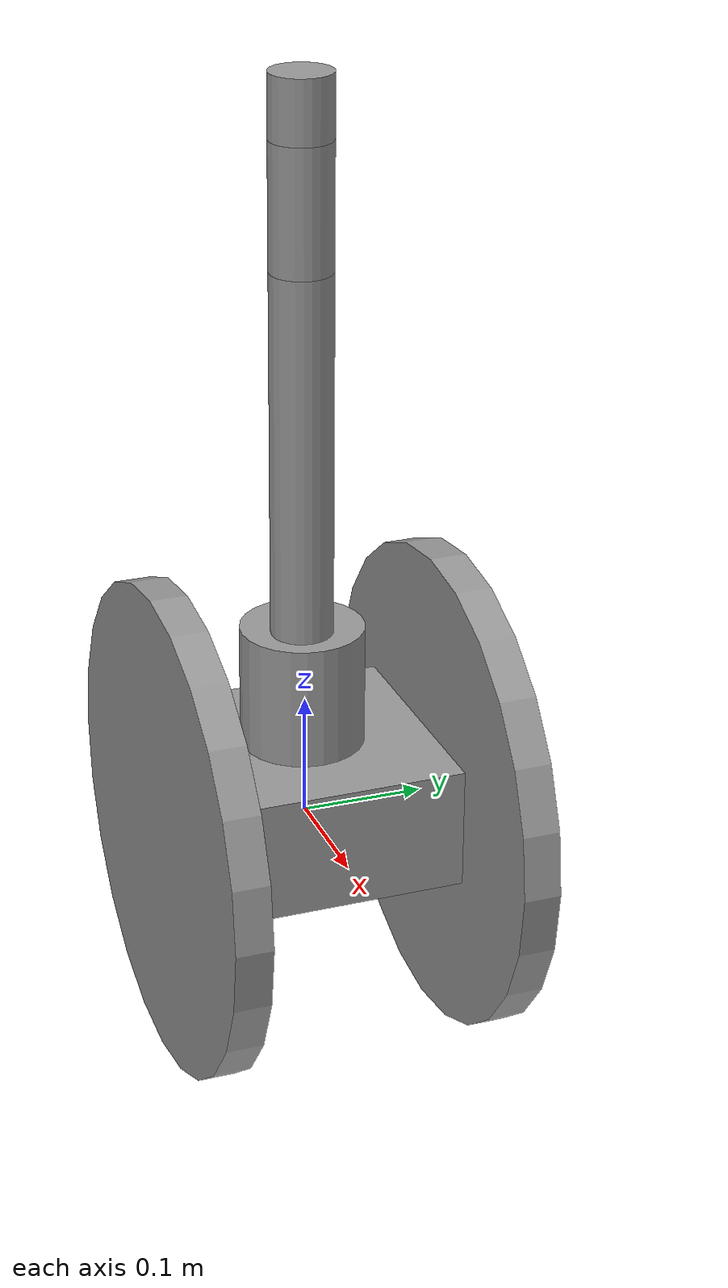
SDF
<?xml version='1.0'?>
<sdf version='1.7'>
  <model name='project1_model'>
    <link name='link_0'>
      <inertial>
        <mass>1</mass>
        <inertia>
          <ixx>0.166667</ixx>
          <ixy>0</ixy>
          <ixz>0</ixz>
          <iyy>0.166667</iyy>
          <iyz>0</iyz>
          <izz>0.166667</izz>
        </inertia>
        <pose>0 0 0 0 -0 0</pose>
      </inertial>
      <pose>0 -0.002143 0.016429 0 -0 0</pose>
      <gravity>1</gravity>
      <self_collide>0</self_collide>
      <kinematic>0</kinematic>
      <enable_wind>0</enable_wind>
      <visual name='visual'>
        <pose>0 0 0 0 -0 0</pose>
        <geometry>
          <box>
            <size>0.2 0.2 0.1</size>
          </box>
        </geometry>
        <material>
          <lighting>1</lighting>
          <script>
            <uri>file://media/materials/scripts/gazebo.material</uri>
            <name>Gazebo/Grey</name>
          </script>
          <shader type='pixel'>
            <normal_map>__default__</normal_map>
          </shader>
          <ambient>0.3 0.3 0.3 1</ambient>
          <diffuse>0.7 0.7 0.7 1</diffuse>
          <specular>0.01 0.01 0.01 1</specular>
          <emissive>0 0 0 1</emissive>
        </material>
        <transparency>0</transparency>
        <cast_shadows>1</cast_shadows>
      </visual>
      <collision name='collision'>
        <laser_retro>0</laser_retro>
        <max_contacts>10</max_contacts>
        <pose>0 0 0 0 -0 0</pose>
        <geometry>
          <box>
            <size>0.2 0.2 0.1</size>
          </box>
        </geometry>
        <surface>
          <friction>
            <ode>
              <mu>1</mu>
              <mu2>1</mu2>
              <fdir1>0 0 0</fdir1>
              <slip1>0</slip1>
              <slip2>0</slip2>
            </ode>
            <torsional>
              <coefficient>1</coefficient>
              <patch_radius>0</patch_radius>
              <surface_radius>0</surface_radius>
              <use_patch_radius>1</use_patch_radius>
              <ode>
                <slip>0</slip>
              </ode>
            </torsional>
          </friction>
          <bounce>
            <restitution_coefficient>0</restitution_coefficient>
            <threshold>1e+06</threshold>
          </bounce>
          <contact>
            <collide_without_contact>0</collide_without_contact>
            <collide_without_contact_bitmask>1</collide_without_contact_bitmask>
            <collide_bitmask>1</collide_bitmask>
            <ode>
              <soft_cfm>0</soft_cfm>
              <soft_erp>0.2</soft_erp>
              <kp>1e+13</kp>
              <kd>1</kd>
              <max_vel>0.01</max_vel>
              <min_depth>0</min_depth>
            </ode>
            <bullet>
              <split_impulse>1</split_impulse>
              <split_impulse_penetration_threshold>-0.01</split_impulse_penetration_threshold>
              <soft_cfm>0</soft_cfm>
              <soft_erp>0.2</soft_erp>
              <kp>1e+13</kp>
              <kd>1</kd>
            </bullet>
          </contact>
        </surface>
      </collision>
    </link>
    <link name='link_1'>
      <inertial>
        <mass>1</mass>
        <inertia>
          <ixx>0.145833</ixx>
          <ixy>0</ixy>
          <ixz>0</ixz>
          <iyy>0.145833</iyy>
          <iyz>0</iyz>
          <izz>0.125</izz>
        </inertia>
        <pose>0 0 0 0 -0 0</pose>
      </inertial>
      <pose>0.02 -0.117162 0.016429 1.5707 -0 0</pose>
      <gravity>1</gravity>
      <self_collide>0</self_collide>
      <kinematic>0</kinematic>
      <enable_wind>0</enable_wind>
      <visual name='visual'>
        <pose>0 0 0 0 -0 0</pose>
        <geometry>
          <cylinder>
            <radius>0.2</radius>
            <length>0.03</length>
          </cylinder>
        </geometry>
        <material>
          <lighting>1</lighting>
          <script>
            <uri>file://media/materials/scripts/gazebo.material</uri>
            <name>Gazebo/Grey</name>
          </script>
          <shader type='pixel'>
            <normal_map>__default__</normal_map>
          </shader>
          <ambient>0.3 0.3 0.3 1</ambient>
          <diffuse>0.7 0.7 0.7 1</diffuse>
          <specular>0.01 0.01 0.01 1</specular>
          <emissive>0 0 0 1</emissive>
        </material>
        <transparency>0</transparency>
        <cast_shadows>1</cast_shadows>
      </visual>
      <collision name='collision'>
        <laser_retro>0</laser_retro>
        <max_contacts>10</max_contacts>
        <pose>0 0 0 0 -0 0</pose>
        <geometry>
          <cylinder>
            <radius>0.2</radius>
            <length>0.03</length>
          </cylinder>
        </geometry>
        <surface>
          <friction>
            <ode>
              <mu>1</mu>
              <mu2>1</mu2>
              <fdir1>0 0 0</fdir1>
              <slip1>0</slip1>
              <slip2>0</slip2>
            </ode>
            <torsional>
              <coefficient>1</coefficient>
              <patch_radius>0</patch_radius>
              <surface_radius>0</surface_radius>
              <use_patch_radius>1</use_patch_radius>
              <ode>
                <slip>0</slip>
              </ode>
            </torsional>
          </friction>
          <bounce>
            <restitution_coefficient>0</restitution_coefficient>
            <threshold>1e+06</threshold>
          </bounce>
          <contact>
            <collide_without_contact>0</collide_without_contact>
            <collide_without_contact_bitmask>1</collide_without_contact_bitmask>
            <collide_bitmask>1</collide_bitmask>
            <ode>
              <soft_cfm>0</soft_cfm>
              <soft_erp>0.2</soft_erp>
              <kp>1e+13</kp>
              <kd>1</kd>
              <max_vel>0.01</max_vel>
              <min_depth>0</min_depth>
            </ode>
            <bullet>
              <split_impulse>1</split_impulse>
              <split_impulse_penetration_threshold>-0.01</split_impulse_penetration_threshold>
              <soft_cfm>0</soft_cfm>
              <soft_erp>0.2</soft_erp>
              <kp>1e+13</kp>
              <kd>1</kd>
            </bullet>
          </contact>
        </surface>
      </collision>
    </link>
    <link name='link_1_clone'>
      <inertial>
        <mass>1</mass>
        <inertia>
          <ixx>0.145833</ixx>
          <ixy>0</ixy>
          <ixz>0</ixz>
          <iyy>0.145833</iyy>
          <iyz>0</iyz>
          <izz>0.125</izz>
        </inertia>
        <pose>0 0 0 0 -0 0</pose>
      </inertial>
      <pose>0.02 0.112857 0.016429 1.5707 -0 0</pose>
      <gravity>1</gravity>
      <self_collide>0</self_collide>
      <kinematic>0</kinematic>
      <enable_wind>0</enable_wind>
      <visual name='visual'>
        <pose>0 0 0 0 -0 0</pose>
        <geometry>
          <cylinder>
            <radius>0.2</radius>
            <length>0.03</length>
          </cylinder>
        </geometry>
        <material>
          <lighting>1</lighting>
          <script>
            <uri>file://media/materials/scripts/gazebo.material</uri>
            <name>Gazebo/Grey</name>
          </script>
          <shader type='pixel'>
            <normal_map>__default__</normal_map>
          </shader>
          <ambient>0.3 0.3 0.3 1</ambient>
          <diffuse>0.7 0.7 0.7 1</diffuse>
          <specular>0.01 0.01 0.01 1</specular>
          <emissive>0 0 0 1</emissive>
        </material>
        <transparency>0</transparency>
        <cast_shadows>1</cast_shadows>
      </visual>
      <collision name='collision'>
        <laser_retro>0</laser_retro>
        <max_contacts>10</max_contacts>
        <pose>0 0 0 0 -0 0</pose>
        <geometry>
          <cylinder>
            <radius>0.2</radius>
            <length>0.03</length>
          </cylinder>
        </geometry>
        <surface>
          <friction>
            <ode>
              <mu>1</mu>
              <mu2>1</mu2>
              <fdir1>0 0 0</fdir1>
              <slip1>0</slip1>
              <slip2>0</slip2>
            </ode>
            <torsional>
              <coefficient>1</coefficient>
              <patch_radius>0</patch_radius>
              <surface_radius>0</surface_radius>
              <use_patch_radius>1</use_patch_radius>
              <ode>
                <slip>0</slip>
              </ode>
            </torsional>
          </friction>
          <bounce>
            <restitution_coefficient>0</restitution_coefficient>
            <threshold>1e+06</threshold>
          </bounce>
          <contact>
            <collide_without_contact>0</collide_without_contact>
            <collide_without_contact_bitmask>1</collide_without_contact_bitmask>
            <collide_bitmask>1</collide_bitmask>
            <ode>
              <soft_cfm>0</soft_cfm>
              <soft_erp>0.2</soft_erp>
              <kp>1e+13</kp>
              <kd>1</kd>
              <max_vel>0.01</max_vel>
              <min_depth>0</min_depth>
            </ode>
            <bullet>
              <split_impulse>1</split_impulse>
              <split_impulse_penetration_threshold>-0.01</split_impulse_penetration_threshold>
              <soft_cfm>0</soft_cfm>
              <soft_erp>0.2</soft_erp>
              <kp>1e+13</kp>
              <kd>1</kd>
            </bullet>
          </contact>
        </surface>
      </collision>
    </link>
    <link name='link_2'>
      <inertial>
        <mass>1</mass>
        <inertia>
          <ixx>0.145833</ixx>
          <ixy>0</ixy>
          <ixz>0</ixz>
          <iyy>0.145833</iyy>
          <iyz>0</iyz>
          <izz>0.125</izz>
        </inertia>
        <pose>0 0 0 0 -0 0</pose>
      </inertial>
      <pose>0 -0.002143 0.116429 0 -0 0</pose>
      <gravity>1</gravity>
      <self_collide>0</self_collide>
      <kinematic>0</kinematic>
      <enable_wind>0</enable_wind>
      <visual name='visual'>
        <pose>0 0 0 0 -0 0</pose>
        <geometry>
          <cylinder>
            <radius>0.05</radius>
            <length>0.1</length>
          </cylinder>
        </geometry>
        <material>
          <lighting>1</lighting>
          <script>
            <uri>file://media/materials/scripts/gazebo.material</uri>
            <name>Gazebo/Grey</name>
          </script>
          <shader type='pixel'>
            <normal_map>__default__</normal_map>
          </shader>
          <ambient>0.3 0.3 0.3 1</ambient>
          <diffuse>0.7 0.7 0.7 1</diffuse>
          <specular>0.01 0.01 0.01 1</specular>
          <emissive>0 0 0 1</emissive>
        </material>
        <transparency>0</transparency>
        <cast_shadows>1</cast_shadows>
      </visual>
      <collision name='collision'>
        <laser_retro>0</laser_retro>
        <max_contacts>10</max_contacts>
        <pose>0 0 0 0 -0 0</pose>
        <geometry>
          <cylinder>
            <radius>0.05</radius>
            <length>0.1</length>
          </cylinder>
        </geometry>
        <surface>
          <friction>
            <ode>
              <mu>1</mu>
              <mu2>1</mu2>
              <fdir1>0 0 0</fdir1>
              <slip1>0</slip1>
              <slip2>0</slip2>
            </ode>
            <torsional>
              <coefficient>1</coefficient>
              <patch_radius>0</patch_radius>
              <surface_radius>0</surface_radius>
              <use_patch_radius>1</use_patch_radius>
              <ode>
                <slip>0</slip>
              </ode>
            </torsional>
          </friction>
          <bounce>
            <restitution_coefficient>0</restitution_coefficient>
            <threshold>1e+06</threshold>
          </bounce>
          <contact>
            <collide_without_contact>0</collide_without_contact>
            <collide_without_contact_bitmask>1</collide_without_contact_bitmask>
            <collide_bitmask>1</collide_bitmask>
            <ode>
              <soft_cfm>0</soft_cfm>
              <soft_erp>0.2</soft_erp>
              <kp>1e+13</kp>
              <kd>1</kd>
              <max_vel>0.01</max_vel>
              <min_depth>0</min_depth>
            </ode>
            <bullet>
              <split_impulse>1</split_impulse>
              <split_impulse_penetration_threshold>-0.01</split_impulse_penetration_threshold>
              <soft_cfm>0</soft_cfm>
              <soft_erp>0.2</soft_erp>
              <kp>1e+13</kp>
              <kd>1</kd>
            </bullet>
          </contact>
        </surface>
      </collision>
    </link>
    <link name='link_2_clone'>
      <inertial>
        <mass>1</mass>
        <inertia>
          <ixx>0.145833</ixx>
          <ixy>0</ixy>
          <ixz>0</ixz>
          <iyy>0.145833</iyy>
          <iyz>0</iyz>
          <izz>0.125</izz>
        </inertia>
        <pose>0 0 0 0 -0 0</pose>
      </inertial>
      <pose>0.01 -0.005898 0.311429 0 -0 0</pose>
      <gravity>1</gravity>
      <self_collide>0</self_collide>
      <kinematic>0</kinematic>
      <enable_wind>0</enable_wind>
      <visual name='visual'>
        <pose>0 0 0 0 -0 0</pose>
        <geometry>
          <cylinder>
            <radius>0.025</radius>
            <length>0.3</length>
          </cylinder>
        </geometry>
        <material>
          <lighting>1</lighting>
          <script>
            <uri>file://media/materials/scripts/gazebo.material</uri>
            <name>Gazebo/Grey</name>
          </script>
          <shader type='pixel'>
            <normal_map>__default__</normal_map>
          </shader>
          <ambient>0.3 0.3 0.3 1</ambient>
          <diffuse>0.7 0.7 0.7 1</diffuse>
          <specular>0.01 0.01 0.01 1</specular>
          <emissive>0 0 0 1</emissive>
        </material>
        <transparency>0</transparency>
        <cast_shadows>1</cast_shadows>
      </visual>
      <collision name='collision'>
        <laser_retro>0</laser_retro>
        <max_contacts>10</max_contacts>
        <pose>0 0 0 0 -0 0</pose>
        <geometry>
          <cylinder>
            <radius>0.025</radius>
            <length>0.3</length>
          </cylinder>
        </geometry>
        <surface>
          <friction>
            <ode>
              <mu>1</mu>
              <mu2>1</mu2>
              <fdir1>0 0 0</fdir1>
              <slip1>0</slip1>
              <slip2>0</slip2>
            </ode>
            <torsional>
              <coefficient>1</coefficient>
              <patch_radius>0</patch_radius>
              <surface_radius>0</surface_radius>
              <use_patch_radius>1</use_patch_radius>
              <ode>
                <slip>0</slip>
              </ode>
            </torsional>
          </friction>
          <bounce>
            <restitution_coefficient>0</restitution_coefficient>
            <threshold>1e+06</threshold>
          </bounce>
          <contact>
            <collide_without_contact>0</collide_without_contact>
            <collide_without_contact_bitmask>1</collide_without_contact_bitmask>
            <collide_bitmask>1</collide_bitmask>
            <ode>
              <soft_cfm>0</soft_cfm>
              <soft_erp>0.2</soft_erp>
              <kp>1e+13</kp>
              <kd>1</kd>
              <max_vel>0.01</max_vel>
              <min_depth>0</min_depth>
            </ode>
            <bullet>
              <split_impulse>1</split_impulse>
              <split_impulse_penetration_threshold>-0.01</split_impulse_penetration_threshold>
              <soft_cfm>0</soft_cfm>
              <soft_erp>0.2</soft_erp>
              <kp>1e+13</kp>
              <kd>1</kd>
            </bullet>
          </contact>
        </surface>
      </collision>
    </link>
    <link name='link_2_clone_clone'>
      <inertial>
        <mass>1</mass>
        <inertia>
          <ixx>0.145833</ixx>
          <ixy>0</ixy>
          <ixz>0</ixz>
          <iyy>0.145833</iyy>
          <iyz>0</iyz>
          <izz>0.125</izz>
        </inertia>
        <pose>0 0 0 0 -0 0</pose>
      </inertial>
      <pose>0.01 -0.005898 0.511429 0 -0 0</pose>
      <gravity>1</gravity>
      <self_collide>0</self_collide>
      <kinematic>0</kinematic>
      <enable_wind>0</enable_wind>
      <visual name='visual'>
        <pose>0 0 0 0 -0 0</pose>
        <geometry>
          <cylinder>
            <radius>0.025</radius>
            <length>0.1</length>
          </cylinder>
        </geometry>
        <material>
          <lighting>1</lighting>
          <script>
            <uri>file://media/materials/scripts/gazebo.material</uri>
            <name>Gazebo/Grey</name>
          </script>
          <shader type='pixel'>
            <normal_map>__default__</normal_map>
          </shader>
          <ambient>0.3 0.3 0.3 1</ambient>
          <diffuse>0.7 0.7 0.7 1</diffuse>
          <specular>0.01 0.01 0.01 1</specular>
          <emissive>0 0 0 1</emissive>
        </material>
        <transparency>0</transparency>
        <cast_shadows>1</cast_shadows>
      </visual>
      <collision name='collision'>
        <laser_retro>0</laser_retro>
        <max_contacts>10</max_contacts>
        <pose>0 0 0 0 -0 0</pose>
        <geometry>
          <cylinder>
            <radius>0.025</radius>
            <length>0.1</length>
          </cylinder>
        </geometry>
        <surface>
          <friction>
            <ode>
              <mu>1</mu>
              <mu2>1</mu2>
              <fdir1>0 0 0</fdir1>
              <slip1>0</slip1>
              <slip2>0</slip2>
            </ode>
            <torsional>
              <coefficient>1</coefficient>
              <patch_radius>0</patch_radius>
              <surface_radius>0</surface_radius>
              <use_patch_radius>1</use_patch_radius>
              <ode>
                <slip>0</slip>
              </ode>
            </torsional>
          </friction>
          <bounce>
            <restitution_coefficient>0</restitution_coefficient>
            <threshold>1e+06</threshold>
          </bounce>
          <contact>
            <collide_without_contact>0</collide_without_contact>
            <collide_without_contact_bitmask>1</collide_without_contact_bitmask>
            <collide_bitmask>1</collide_bitmask>
            <ode>
              <soft_cfm>0</soft_cfm>
              <soft_erp>0.2</soft_erp>
              <kp>1e+13</kp>
              <kd>1</kd>
              <max_vel>0.01</max_vel>
              <min_depth>0</min_depth>
            </ode>
            <bullet>
              <split_impulse>1</split_impulse>
              <split_impulse_penetration_threshold>-0.01</split_impulse_penetration_threshold>
              <soft_cfm>0</soft_cfm>
              <soft_erp>0.2</soft_erp>
              <kp>1e+13</kp>
              <kd>1</kd>
            </bullet>
          </contact>
        </surface>
      </collision>
    </link>
    <link name='link_2_clone_clone_clone'>
      <inertial>
        <mass>1</mass>
        <inertia>
          <ixx>0.145833</ixx>
          <ixy>0</ixy>
          <ixz>0</ixz>
          <iyy>0.145833</iyy>
          <iyz>0</iyz>
          <izz>0.125</izz>
        </inertia>
        <pose>0 0 0 0 -0 0</pose>
      </inertial>
      <pose>0.01 -0.005898 0.586429 0 -0 0</pose>
      <gravity>1</gravity>
      <self_collide>0</self_collide>
      <kinematic>0</kinematic>
      <enable_wind>0</enable_wind>
      <visual name='visual'>
        <pose>0 0 0 0 -0 0</pose>
        <geometry>
          <cylinder>
            <radius>0.025</radius>
            <length>0.05</length>
          </cylinder>
        </geometry>
        <material>
          <lighting>1</lighting>
          <script>
            <uri>file://media/materials/scripts/gazebo.material</uri>
            <name>Gazebo/Grey</name>
          </script>
          <shader type='pixel'>
            <normal_map>__default__</normal_map>
          </shader>
          <ambient>0.3 0.3 0.3 1</ambient>
          <diffuse>0.7 0.7 0.7 1</diffuse>
          <specular>0.01 0.01 0.01 1</specular>
          <emissive>0 0 0 1</emissive>
        </material>
        <transparency>0</transparency>
        <cast_shadows>1</cast_shadows>
      </visual>
      <collision name='collision'>
        <laser_retro>0</laser_retro>
        <max_contacts>10</max_contacts>
        <pose>0 0 0 0 -0 0</pose>
        <geometry>
          <cylinder>
            <radius>0.025</radius>
            <length>0.05</length>
          </cylinder>
        </geometry>
        <surface>
          <friction>
            <ode>
              <mu>1</mu>
              <mu2>1</mu2>
              <fdir1>0 0 0</fdir1>
              <slip1>0</slip1>
              <slip2>0</slip2>
            </ode>
            <torsional>
              <coefficient>1</coefficient>
              <patch_radius>0</patch_radius>
              <surface_radius>0</surface_radius>
              <use_patch_radius>1</use_patch_radius>
              <ode>
                <slip>0</slip>
              </ode>
            </torsional>
          </friction>
          <bounce>
            <restitution_coefficient>0</restitution_coefficient>
            <threshold>1e+06</threshold>
          </bounce>
          <contact>
            <collide_without_contact>0</collide_without_contact>
            <collide_without_contact_bitmask>1</collide_without_contact_bitmask>
            <collide_bitmask>1</collide_bitmask>
            <ode>
              <soft_cfm>0</soft_cfm>
              <soft_erp>0.2</soft_erp>
              <kp>1e+13</kp>
              <kd>1</kd>
              <max_vel>0.01</max_vel>
              <min_depth>0</min_depth>
            </ode>
            <bullet>
              <split_impulse>1</split_impulse>
              <split_impulse_penetration_threshold>-0.01</split_impulse_penetration_threshold>
              <soft_cfm>0</soft_cfm>
              <soft_erp>0.2</soft_erp>
              <kp>1e+13</kp>
              <kd>1</kd>
            </bullet>
          </contact>
        </surface>
      </collision>
    </link>
    <joint name='link_0_JOINT_0' type='revolute'>
      <parent>link_0</parent>
      <child>link_1</child>
      <pose>0 0 0 0 -0 0</pose>
      <axis>
        <xyz>0 0 1</xyz>
        <limit>
          <lower>-1.79769e+308</lower>
          <upper>1.79769e+308</upper>
          <effort>-1</effort>
          <velocity>-1</velocity>
        </limit>
        <dynamics>
          <spring_reference>0</spring_reference>
          <spring_stiffness>0</spring_stiffness>
          <damping>0</damping>
        </dynamics>
      </axis>
      <physics>
        <ode>
          <limit>
            <cfm>0</cfm>
            <erp>0.2</erp>
          </limit>
          <suspension>
            <cfm>0</cfm>
            <erp>0.2</erp>
          </suspension>
        </ode>
      </physics>
    </joint>
    <joint name='link_0_JOINT_2' type='revolute'>
      <parent>link_0</parent>
      <child>link_1_clone</child>
      <pose>0 0 0 0 -0 0</pose>
      <axis>
        <xyz>0 0 1</xyz>
        <limit>
          <lower>-1.79769e+308</lower>
          <upper>1.79769e+308</upper>
          <effort>-1</effort>
          <velocity>-1</velocity>
        </limit>
        <dynamics>
          <spring_reference>0</spring_reference>
          <spring_stiffness>0</spring_stiffness>
          <damping>0</damping>
        </dynamics>
      </axis>
      <physics>
        <ode>
          <limit>
            <cfm>0</cfm>
            <erp>0.2</erp>
          </limit>
          <suspension>
            <cfm>0</cfm>
            <erp>0.2</erp>
          </suspension>
        </ode>
      </physics>
    </joint>
    <joint name='link_0_JOINT_3' type='revolute'>
      <parent>link_0</parent>
      <child>link_2</child>
      <pose>0 0 0 0 -0 0</pose>
      <axis>
        <xyz>0 0 1</xyz>
        <limit>
          <lower>-1.79769e+308</lower>
          <upper>1.79769e+308</upper>
          <effort>-1</effort>
          <velocity>-1</velocity>
        </limit>
        <dynamics>
          <spring_reference>0</spring_reference>
          <spring_stiffness>0</spring_stiffness>
          <damping>0</damping>
        </dynamics>
      </axis>
      <physics>
        <ode>
          <limit>
            <cfm>0</cfm>
            <erp>0.2</erp>
          </limit>
          <suspension>
            <cfm>0</cfm>
            <erp>0.2</erp>
          </suspension>
        </ode>
      </physics>
    </joint>
    <joint name='link_2_JOINT_4' type='revolute'>
      <parent>link_2</parent>
      <child>link_2_clone</child>
      <pose>0 0 0 0 -0 0</pose>
      <axis>
        <xyz>0 1 0</xyz>
        <limit>
          <lower>-1.79769e+308</lower>
          <upper>1.79769e+308</upper>
          <effort>-1</effort>
          <velocity>-1</velocity>
        </limit>
        <dynamics>
          <spring_reference>0</spring_reference>
          <spring_stiffness>0</spring_stiffness>
          <damping>0</damping>
        </dynamics>
      </axis>
      <physics>
        <ode>
          <limit>
            <cfm>0</cfm>
            <erp>0.2</erp>
          </limit>
          <suspension>
            <cfm>0</cfm>
            <erp>0.2</erp>
          </suspension>
        </ode>
      </physics>
    </joint>
    <joint name='link_2_clone_JOINT_5' type='revolute'>
      <parent>link_2_clone</parent>
      <child>link_2_clone_clone</child>
      <pose>0 0 0 0 -0 0</pose>
      <axis>
        <xyz>1 0 0</xyz>
        <limit>
          <lower>-1.79769e+308</lower>
          <upper>1.79769e+308</upper>
          <effort>-1</effort>
          <velocity>-1</velocity>
        </limit>
        <dynamics>
          <spring_reference>0</spring_reference>
          <spring_stiffness>0</spring_stiffness>
          <damping>0</damping>
        </dynamics>
      </axis>
      <physics>
        <ode>
          <limit>
            <cfm>0</cfm>
            <erp>0.2</erp>
          </limit>
          <suspension>
            <cfm>0</cfm>
            <erp>0.2</erp>
          </suspension>
        </ode>
      </physics>
    </joint>
    <joint name='link_2_clone_clone_JOINT_7' type='revolute'>
      <parent>link_2_clone_clone</parent>
      <child>link_2_clone_clone_clone</child>
      <pose>0 0 0 0 -0 0</pose>
      <axis>
        <xyz>0 1 0</xyz>
        <limit>
          <lower>-1.79769e+308</lower>
          <upper>1.79769e+308</upper>
          <effort>-1</effort>
          <velocity>-1</velocity>
        </limit>
        <dynamics>
          <spring_reference>0</spring_reference>
          <spring_stiffness>0</spring_stiffness>
          <damping>0</damping>
        </dynamics>
      </axis>
      <physics>
        <ode>
          <limit>
            <cfm>0</cfm>
            <erp>0.2</erp>
          </limit>
          <suspension>
            <cfm>0</cfm>
            <erp>0.2</erp>
          </suspension>
        </ode>
      </physics>
    </joint>
    <static>0</static>
    <allow_auto_disable>1</allow_auto_disable>
  </model>
</sdf>
